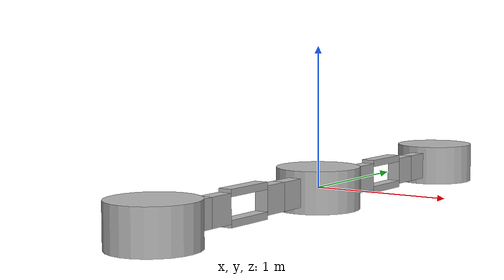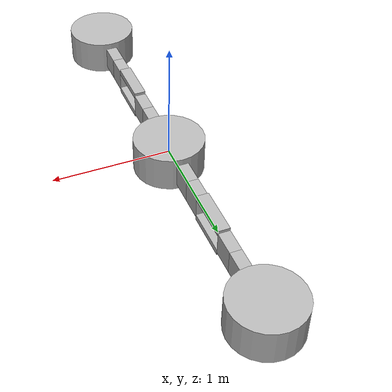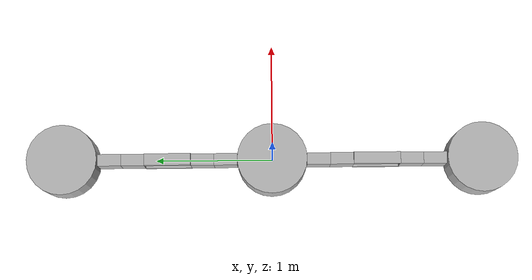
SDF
<?xml version='1.0'?>
<sdf version='1.6'>
    <model name='crx_v1'>
        <static>false</static>
        <self_collide>1</self_collide>

        <link name="world"/>

        <link name="base_link">
            <self_collide>1</self_collide>
            <pose>0 0 0 0 0 0</pose>
            <inertial>
                <mass>0.5</mass>
                <inertia> <!-- inertias are tricky to compute -->
                    <!-- http://gazebosim.org/tutorials?tut=inertia&cat=build_robot -->
                    <ixx>0.083</ixx>       <!-- for a box: ixx = 0.083 * mass * (y*y + z*z) -->
                    <ixy>0.0</ixy>         <!-- for a box: ixy = 0 -->
                    <ixz>0.0</ixz>         <!-- for a box: ixz = 0 -->
                    <iyy>0.083</iyy>       <!-- for a box: iyy = 0.083 * mass * (x*x + z*z) -->
                    <iyz>0.0</iyz>         <!-- for a box: iyz = 0 -->
                    <izz>0.083</izz>       <!-- for a box: izz = 0.083 * mass * (x*x + y*y) -->
                </inertia>
            </inertial>
            <visual name="base_link_visual">
                <geometry>
                    <cylinder>
                        <radius>0.3</radius>
                        <length>0.3</length>
                    </cylinder>
                </geometry>
            </visual>
            <collision name="base_link_collision">
                <geometry>
                    <cylinder>
                        <radius>0.3</radius>
                        <length>0.3</length>
                    </cylinder>
                </geometry>
                <surface>
                    <friction>
                        <ode>
                            <mu>0.01</mu>
                            <mu2>0.01</mu2>
                        </ode>
                    </friction>
                </surface>
            </collision>
        </link>

        <link name="link_LA">
            <self_collide>1</self_collide>
            <pose>0 0.4 0 0 0 0</pose>
            <inertial>
                <mass>0.5</mass>
                <inertia> <!-- inertias are tricky to compute -->
                    <!-- http://gazebosim.org/tutorials?tut=inertia&cat=build_robot -->
                    <ixx>0.083</ixx>       <!-- for a box: ixx = 0.083 * mass * (y*y + z*z) -->
                    <ixy>0.0</ixy>         <!-- for a box: ixy = 0 -->
                    <ixz>0.0</ixz>         <!-- for a box: ixz = 0 -->
                    <iyy>0.083</iyy>       <!-- for a box: iyy = 0.083 * mass * (x*x + z*z) -->
                    <iyz>0.0</iyz>         <!-- for a box: iyz = 0 -->
                    <izz>0.083</izz>       <!-- for a box: izz = 0.083 * mass * (x*x + y*y) -->
                </inertia>
            </inertial>
            <visual name="link_LA_visual">
                <geometry>
                    <box>
                        <size>0.1 0.2 0.2</size>
                    </box>
                </geometry>
            </visual>
            <collision name="link_LA_collision">
                <geometry>
                    <box>
                        <size>0.1 0.2 0.2</size>
                    </box>
                </geometry>
                <surface>
                    <friction>
                        <ode>
                            <mu>0.01</mu>
                            <mu2>0.01</mu2>
                        </ode>
                    </friction>
                </surface>
            </collision>
        </link>

        <link name="link_LB">
            <self_collide>1</self_collide>
            <pose>0 0.6 0 0 0 0</pose>
            <inertial>
                <mass>0.5</mass>
                <inertia> <!-- inertias are tricky to compute -->
                    <!-- http://gazebosim.org/tutorials?tut=inertia&cat=build_robot -->
                    <ixx>0.083</ixx>       <!-- for a box: ixx = 0.083 * mass * (y*y + z*z) -->
                    <ixy>0.0</ixy>         <!-- for a box: ixy = 0 -->
                    <ixz>0.0</ixz>         <!-- for a box: ixz = 0 -->
                    <iyy>0.083</iyy>       <!-- for a box: iyy = 0.083 * mass * (x*x + z*z) -->
                    <iyz>0.0</iyz>         <!-- for a box: iyz = 0 -->
                    <izz>0.083</izz>       <!-- for a box: izz = 0.083 * mass * (x*x + y*y) -->
                </inertia>
            </inertial>
            <visual name="link_LB_visual">
                <geometry>
                    <box>
                        <size>0.1 0.2 0.2</size>
                    </box>
                </geometry>
            </visual>
            <collision name="link_LB_collision">
                <geometry>
                    <box>
                        <size>0.1 0.2 0.2</size>
                    </box>
                </geometry>
                <surface>
                    <friction>
                        <ode>
                            <mu>0.01</mu>
                            <mu2>0.01</mu2>
                        </ode>
                    </friction>
                </surface>
            </collision>
        </link>

        <link name="link_LC">
            <self_collide>1</self_collide>
            <pose>0 0.9 0.1 0 0 0</pose>
            <inertial>
                <mass>0.5</mass>
                <inertia> <!-- inertias are tricky to compute -->
                    <!-- http://gazebosim.org/tutorials?tut=inertia&cat=build_robot -->
                    <ixx>0.083</ixx>       <!-- for a box: ixx = 0.083 * mass * (y*y + z*z) -->
                    <ixy>0.0</ixy>         <!-- for a box: ixy = 0 -->
                    <ixz>0.0</ixz>         <!-- for a box: ixz = 0 -->
                    <iyy>0.083</iyy>       <!-- for a box: iyy = 0.083 * mass * (x*x + z*z) -->
                    <iyz>0.0</iyz>         <!-- for a box: iyz = 0 -->
                    <izz>0.083</izz>       <!-- for a box: izz = 0.083 * mass * (x*x + y*y) -->
                </inertia>
            </inertial>
            <visual name="link_LC_visual">
                <geometry>
                    <box>
                        <size>0.1 0.4 0.05</size>
                    </box>
                </geometry>
            </visual>
            <collision name="link_LC_collision">
                <geometry>
                    <box>
                        <size>0.1 0.4 0.05</size>
                    </box>
                </geometry>
                <surface>
                    <friction>
                        <ode>
                            <mu>0.01</mu>
                            <mu2>0.01</mu2>
                        </ode>
                    </friction>
                </surface>
            </collision>
        </link>

        <link name="link_LD">
            <self_collide>1</self_collide>
            <pose>0 1.2 0 0 0 0</pose>
            <inertial>
                <mass>0.5</mass>
                <inertia> <!-- inertias are tricky to compute -->
                    <!-- http://gazebosim.org/tutorials?tut=inertia&cat=build_robot -->
                    <ixx>0.083</ixx>       <!-- for a box: ixx = 0.083 * mass * (y*y + z*z) -->
                    <ixy>0.0</ixy>         <!-- for a box: ixy = 0 -->
                    <ixz>0.0</ixz>         <!-- for a box: ixz = 0 -->
                    <iyy>0.083</iyy>       <!-- for a box: iyy = 0.083 * mass * (x*x + z*z) -->
                    <iyz>0.0</iyz>         <!-- for a box: iyz = 0 -->
                    <izz>0.083</izz>       <!-- for a box: izz = 0.083 * mass * (x*x + y*y) -->
                </inertia>
            </inertial>
            <visual name="link_LD_visual">
                <geometry>
                    <box>
                        <size>0.1 0.2 0.2</size>
                    </box>
                </geometry>
            </visual>
            <collision name="link_LD_collision">
                <geometry>
                    <box>
                        <size>0.1 0.2 0.2</size>
                    </box>
                </geometry>
                <surface>
                    <friction>
                        <ode>
                            <mu>0.01</mu>
                            <mu2>0.01</mu2>
                        </ode>
                    </friction>
                </surface>
            </collision>
        </link>

        <link name="link_LE">
            <self_collide>1</self_collide>
            <pose>0 1.4 0 0 0 0</pose>
            <inertial>
                <mass>0.5</mass>
                <inertia> <!-- inertias are tricky to compute -->
                    <!-- http://gazebosim.org/tutorials?tut=inertia&cat=build_robot -->
                    <ixx>0.083</ixx>       <!-- for a box: ixx = 0.083 * mass * (y*y + z*z) -->
                    <ixy>0.0</ixy>         <!-- for a box: ixy = 0 -->
                    <ixz>0.0</ixz>         <!-- for a box: ixz = 0 -->
                    <iyy>0.083</iyy>       <!-- for a box: iyy = 0.083 * mass * (x*x + z*z) -->
                    <iyz>0.0</iyz>         <!-- for a box: iyz = 0 -->
                    <izz>0.083</izz>       <!-- for a box: izz = 0.083 * mass * (x*x + y*y) -->
                </inertia>
            </inertial>
            <visual name="link_LE_visual">
                <geometry>
                    <box>
                        <size>0.1 0.2 0.2</size>
                    </box>
                </geometry>
            </visual>
            <collision name="link_LE_collision">
                <geometry>
                    <box>
                        <size>0.1 0.2 0.2</size>
                    </box>
                </geometry>
                <surface>
                    <friction>
                        <ode>
                            <mu>0.01</mu>
                            <mu2>0.01</mu2>
                        </ode>
                    </friction>
                </surface>
            </collision>
        </link>

        <link name="link_LF">
            <self_collide>1</self_collide>
            <pose>0 0.9 -0.1 0 0 0</pose>
            <inertial>
                <mass>0.5</mass>
                <inertia> <!-- inertias are tricky to compute -->
                    <!-- http://gazebosim.org/tutorials?tut=inertia&cat=build_robot -->
                    <ixx>0.083</ixx>       <!-- for a box: ixx = 0.083 * mass * (y*y + z*z) -->
                    <ixy>0.0</ixy>         <!-- for a box: ixy = 0 -->
                    <ixz>0.0</ixz>         <!-- for a box: ixz = 0 -->
                    <iyy>0.083</iyy>       <!-- for a box: iyy = 0.083 * mass * (x*x + z*z) -->
                    <iyz>0.0</iyz>         <!-- for a box: iyz = 0 -->
                    <izz>0.083</izz>       <!-- for a box: izz = 0.083 * mass * (x*x + y*y) -->
                </inertia>
            </inertial>
            <visual name="link_LF_visual">
                <geometry>
                    <box>
                        <size>0.1 0.4 0.05</size>
                    </box>
                </geometry>
            </visual>
            <collision name="link_LF_collision">
                <geometry>
                    <box>
                        <size>0.1 0.4 0.05</size>
                    </box>
                </geometry>
                <surface>
                    <friction>
                        <ode>
                            <mu>0.01</mu>
                            <mu2>0.01</mu2>
                        </ode>
                    </friction>
                </surface>
            </collision>
        </link>

        <link name="end_link_L">
            <self_collide>1</self_collide>
            <pose>0 1.8 0 0 0 0</pose>
            <inertial>
                <mass>0.5</mass>
                <inertia> <!-- inertias are tricky to compute -->
                    <!-- http://gazebosim.org/tutorials?tut=inertia&cat=build_robot -->
                    <ixx>0.083</ixx>       <!-- for a box: ixx = 0.083 * mass * (y*y + z*z) -->
                    <ixy>0.0</ixy>         <!-- for a box: ixy = 0 -->
                    <ixz>0.0</ixz>         <!-- for a box: ixz = 0 -->
                    <iyy>0.083</iyy>       <!-- for a box: iyy = 0.083 * mass * (x*x + z*z) -->
                    <iyz>0.0</iyz>         <!-- for a box: iyz = 0 -->
                    <izz>0.083</izz>       <!-- for a box: izz = 0.083 * mass * (x*x + y*y) -->
                </inertia>
            </inertial>
            <visual name="end_link_L_visual">
                <geometry>
                    <cylinder>
                        <radius>0.3</radius>
                        <length>0.3</length>
                    </cylinder>
                </geometry>
            </visual>
            <collision name="end_link_L_collision">
                <geometry>
                    <cylinder>
                        <radius>0.3</radius>
                        <length>0.3</length>
                    </cylinder>
                </geometry>
                <surface>
                    <friction>
                        <ode>
                            <mu>0.01</mu>
                            <mu2>0.01</mu2>
                        </ode>
                    </friction>
                </surface>
            </collision>
        </link>

        <link name="link_RA">
            <self_collide>1</self_collide>
            <pose>0 -0.4 0 0 0 0</pose>
            <inertial>
                <mass>0.5</mass>
                <inertia> <!-- inertias are tricky to compute -->
                    <!-- http://gazebosim.org/tutorials?tut=inertia&cat=build_robot -->
                    <ixx>0.083</ixx>       <!-- for a box: ixx = 0.083 * mass * (y*y + z*z) -->
                    <ixy>0.0</ixy>         <!-- for a box: ixy = 0 -->
                    <ixz>0.0</ixz>         <!-- for a box: ixz = 0 -->
                    <iyy>0.083</iyy>       <!-- for a box: iyy = 0.083 * mass * (x*x + z*z) -->
                    <iyz>0.0</iyz>         <!-- for a box: iyz = 0 -->
                    <izz>0.083</izz>       <!-- for a box: izz = 0.083 * mass * (x*x + y*y) -->
                </inertia>
            </inertial>
            <visual name="link_RA_visual">
                <geometry>
                    <box>
                        <size>0.1 0.2 0.2</size>
                    </box>
                </geometry>
            </visual>
            <collision name="link_RA_collision">
                <geometry>
                    <box>
                        <size>0.1 0.2 0.2</size>
                    </box>
                </geometry>
                <surface>
                    <friction>
                        <ode>
                            <mu>0.01</mu>
                            <mu2>0.01</mu2>
                        </ode>
                    </friction>
                </surface>
            </collision>
        </link>

        <link name="link_RB">
            <self_collide>1</self_collide>
            <pose>0 -0.6 0 0 0 0</pose>
            <inertial>
                <mass>0.5</mass>
                <inertia> <!-- inertias are tricky to compute -->
                    <!-- http://gazebosim.org/tutorials?tut=inertia&cat=build_robot -->
                    <ixx>0.083</ixx>       <!-- for a box: ixx = 0.083 * mass * (y*y + z*z) -->
                    <ixy>0.0</ixy>         <!-- for a box: ixy = 0 -->
                    <ixz>0.0</ixz>         <!-- for a box: ixz = 0 -->
                    <iyy>0.083</iyy>       <!-- for a box: iyy = 0.083 * mass * (x*x + z*z) -->
                    <iyz>0.0</iyz>         <!-- for a box: iyz = 0 -->
                    <izz>0.083</izz>       <!-- for a box: izz = 0.083 * mass * (x*x + y*y) -->
                </inertia>
            </inertial>
            <visual name="link_RB_visual">
                <geometry>
                    <box>
                        <size>0.1 0.2 0.2</size>
                    </box>
                </geometry>
            </visual>
            <collision name="link_RB_collision">
                <geometry>
                    <box>
                        <size>0.1 0.2 0.2</size>
                    </box>
                </geometry>
                <surface>
                    <friction>
                        <ode>
                            <mu>0.01</mu>
                            <mu2>0.01</mu2>
                        </ode>
                    </friction>
                </surface>
            </collision>
        </link>

        <link name="link_RC">
            <self_collide>1</self_collide>
            <pose>0 -0.9 0.1 0 0 0</pose>
            <inertial>
                <mass>0.5</mass>
                <inertia> <!-- inertias are tricky to compute -->
                    <!-- http://gazebosim.org/tutorials?tut=inertia&cat=build_robot -->
                    <ixx>0.083</ixx>       <!-- for a box: ixx = 0.083 * mass * (y*y + z*z) -->
                    <ixy>0.0</ixy>         <!-- for a box: ixy = 0 -->
                    <ixz>0.0</ixz>         <!-- for a box: ixz = 0 -->
                    <iyy>0.083</iyy>       <!-- for a box: iyy = 0.083 * mass * (x*x + z*z) -->
                    <iyz>0.0</iyz>         <!-- for a box: iyz = 0 -->
                    <izz>0.083</izz>       <!-- for a box: izz = 0.083 * mass * (x*x + y*y) -->
                </inertia>
            </inertial>
            <visual name="link_RC_visual">
                <geometry>
                    <box>
                        <size>0.1 0.4 0.05</size>
                    </box>
                </geometry>
            </visual>
            <collision name="link_RC_collision">
                <geometry>
                    <box>
                        <size>0.1 0.4 0.05</size>
                    </box>
                </geometry>
                <surface>
                    <friction>
                        <ode>
                            <mu>0.01</mu>
                            <mu2>0.01</mu2>
                        </ode>
                    </friction>
                </surface>
            </collision>
        </link>

        <link name="link_RD">
            <self_collide>1</self_collide>
            <pose>0 -1.2 0 0 0 0</pose>
            <inertial>
                <mass>0.5</mass>
                <inertia> <!-- inertias are tricky to compute -->
                    <!-- http://gazebosim.org/tutorials?tut=inertia&cat=build_robot -->
                    <ixx>0.083</ixx>       <!-- for a box: ixx = 0.083 * mass * (y*y + z*z) -->
                    <ixy>0.0</ixy>         <!-- for a box: ixy = 0 -->
                    <ixz>0.0</ixz>         <!-- for a box: ixz = 0 -->
                    <iyy>0.083</iyy>       <!-- for a box: iyy = 0.083 * mass * (x*x + z*z) -->
                    <iyz>0.0</iyz>         <!-- for a box: iyz = 0 -->
                    <izz>0.083</izz>       <!-- for a box: izz = 0.083 * mass * (x*x + y*y) -->
                </inertia>
            </inertial>
            <visual name="link_RD_visual">
                <geometry>
                    <box>
                        <size>0.1 0.2 0.2</size>
                    </box>
                </geometry>
            </visual>
            <collision name="link_RD_collision">
                <geometry>
                    <box>
                        <size>0.1 0.2 0.2</size>
                    </box>
                </geometry>
                <surface>
                    <friction>
                        <ode>
                            <mu>0.01</mu>
                            <mu2>0.01</mu2>
                        </ode>
                    </friction>
                </surface>
            </collision>
        </link>

        <link name="link_RE">
            <self_collide>1</self_collide>
            <pose>0 -1.4 0 0 0 0</pose>
            <inertial>
                <mass>0.5</mass>
                <inertia> <!-- inertias are tricky to compute -->
                    <!-- http://gazebosim.org/tutorials?tut=inertia&cat=build_robot -->
                    <ixx>0.083</ixx>       <!-- for a box: ixx = 0.083 * mass * (y*y + z*z) -->
                    <ixy>0.0</ixy>         <!-- for a box: ixy = 0 -->
                    <ixz>0.0</ixz>         <!-- for a box: ixz = 0 -->
                    <iyy>0.083</iyy>       <!-- for a box: iyy = 0.083 * mass * (x*x + z*z) -->
                    <iyz>0.0</iyz>         <!-- for a box: iyz = 0 -->
                    <izz>0.083</izz>       <!-- for a box: izz = 0.083 * mass * (x*x + y*y) -->
                </inertia>
            </inertial>
            <visual name="link_RE_visual">
                <geometry>
                    <box>
                        <size>0.1 0.2 0.2</size>
                    </box>
                </geometry>
            </visual>
            <collision name="link_RE_collision">
                <geometry>
                    <box>
                        <size>0.1 0.2 0.2</size>
                    </box>
                </geometry>
                <surface>
                    <friction>
                        <ode>
                            <mu>0.01</mu>
                            <mu2>0.01</mu2>
                        </ode>
                    </friction>
                </surface>
            </collision>
        </link>

        <link name="link_RF">
            <self_collide>1</self_collide>
            <pose>0 -0.9 -0.1 0 0 0</pose>
            <inertial>
                <mass>0.5</mass>
                <inertia> <!-- inertias are tricky to compute -->
                    <!-- http://gazebosim.org/tutorials?tut=inertia&cat=build_robot -->
                    <ixx>0.083</ixx>       <!-- for a box: ixx = 0.083 * mass * (y*y + z*z) -->
                    <ixy>0.0</ixy>         <!-- for a box: ixy = 0 -->
                    <ixz>0.0</ixz>         <!-- for a box: ixz = 0 -->
                    <iyy>0.083</iyy>       <!-- for a box: iyy = 0.083 * mass * (x*x + z*z) -->
                    <iyz>0.0</iyz>         <!-- for a box: iyz = 0 -->
                    <izz>0.083</izz>       <!-- for a box: izz = 0.083 * mass * (x*x + y*y) -->
                </inertia>
            </inertial>
            <visual name="link_RF_visual">
                <geometry>
                    <box>
                        <size>0.1 0.4 0.05</size>
                    </box>
                </geometry>
            </visual>
            <collision name="link_RF_collision">
                <geometry>
                    <box>
                        <size>0.1 0.4 0.05</size>
                    </box>
                </geometry>
                <surface>
                    <friction>
                        <ode>
                            <mu>0.01</mu>
                            <mu2>0.01</mu2>
                        </ode>
                    </friction>
                </surface>
            </collision>
        </link>

        <link name="end_link_R">
            <self_collide>1</self_collide>
            <pose>0 -1.8 0 0 0 0</pose>
            <inertial>
                <mass>0.5</mass>
                <inertia> <!-- inertias are tricky to compute -->
                    <!-- http://gazebosim.org/tutorials?tut=inertia&cat=build_robot -->
                    <ixx>0.083</ixx>       <!-- for a box: ixx = 0.083 * mass * (y*y + z*z) -->
                    <ixy>0.0</ixy>         <!-- for a box: ixy = 0 -->
                    <ixz>0.0</ixz>         <!-- for a box: ixz = 0 -->
                    <iyy>0.083</iyy>       <!-- for a box: iyy = 0.083 * mass * (x*x + z*z) -->
                    <iyz>0.0</iyz>         <!-- for a box: iyz = 0 -->
                    <izz>0.083</izz>       <!-- for a box: izz = 0.083 * mass * (x*x + y*y) -->
                </inertia>
            </inertial>
            <visual name="end_link_R_visual">
                <geometry>
                    <cylinder>
                        <radius>0.3</radius>
                        <length>0.3</length>
                    </cylinder>
                </geometry>
            </visual>
            <collision name="end_link_R_collision">
                <geometry>
                    <cylinder>
                        <radius>0.3</radius>
                        <length>0.3</length>
                    </cylinder>
                </geometry>
                <surface>
                    <friction>
                        <ode>
                            <mu>0.01</mu>
                            <mu2>0.01</mu2>
                        </ode>
                    </friction>
                </surface>
            </collision>
        </link>

        <joint name="world_to_base_link" type="fixed">
            <parent>world</parent>
            <child>base_link</child>
            <pose>0 0 0 0 0 0</pose>
        </joint>

        <joint name="base_link_to_link_LA" type="fixed">
            <parent>base_link</parent>
            <child>link_LA</child>
            <pose>0 -0.1 0 0 0 0</pose>
        </joint>

        <joint name="link_LA_to_link_LB" type="revolute">
            <parent>link_LA</parent>
            <child>link_LB</child>
            <pose>0 -0.1 0 0 0 0</pose>
            <axis>
                <limit>
                    <lower>-1.0</lower>
                    <upper>1.0</upper>
                    <effort>100.0</effort>
                    <velocity>3.14</velocity>
                </limit>
                <xyz>0 0 1</xyz>
            </axis>
        </joint>

        <joint name="link_LB_to_link_LC" type="revolute">
            <parent>link_LB</parent>
            <child>link_LC</child>
            <pose>0 -0.2 0 0 0 0</pose>
            <axis>
                <limit>
                    <lower>-1.0</lower>
                    <upper>1.0</upper>
                    <effort>100.0</effort>
                    <velocity>3.14</velocity>
                </limit>
                <xyz>1 0 0</xyz>
            </axis>
        </joint>

        <joint name="link_LC_to_link_LD" type="revolute">
            <parent>link_LC</parent>
            <child>link_LD</child>
            <pose>0 -0.1 0.1 0 0 0</pose>
            <axis>
                <xyz>1 0 0</xyz>
            </axis>
        </joint>

        <joint name="link_LD_to_link_LE" type="revolute">
            <parent>link_LD</parent>
            <child>link_LE</child>
            <pose>0 -0.1 0 0 0 0</pose>
            <axis>
                <limit>
                    <lower>-1.0</lower>
                    <upper>1.0</upper>
                    <effort>100.0</effort>
                    <velocity>3.14</velocity>
                </limit>
                <xyz>0 0 1</xyz>
            </axis>
        </joint>

        <joint name="link_LD_to_link_LF" type="revolute">
            <parent>link_LD</parent>
            <child>link_LF</child>
            <pose>0 0.2 0 0 0 0</pose>
            <axis>
                <xyz>1 0 0</xyz>
            </axis>
        </joint>

        <joint name="close_joint_L" type="revolute">
            <parent>link_LF</parent>
            <child>link_LB</child>
            <pose>0 0.1 -0.1 0 0 0</pose>
            <axis>
                <xyz>1 0 0</xyz>
            </axis>
        </joint>

        <joint name="link_LE_to_end_link_L" type="fixed">
            <parent>link_LE</parent>
            <child>end_link_L</child>
            <pose>0 -0.3 0 0 0 0</pose>
        </joint>

        <joint name="base_link_to_link_RA" type="fixed">
            <parent>base_link</parent>
            <child>link_RA</child>
            <pose>0 0.1 0 0 0 0</pose>
        </joint>

        <joint name="link_RA_to_link_RB" type="revolute">
            <parent>link_RA</parent>
            <child>link_RB</child>
            <pose>0 0.1 0 0 0 0</pose>
            <axis>
                <limit>
                    <lower>-1.0</lower>
                    <upper>1.0</upper>
                    <effort>100.0</effort>
                    <velocity>3.14</velocity>
                </limit>
                <xyz>0 0 1</xyz>
            </axis>
        </joint>

        <joint name="link_RB_to_link_RC" type="revolute">
            <parent>link_RB</parent>
            <child>link_RC</child>
            <pose>0 0.2 0 0 0 0</pose>
            <axis>
                <limit>
                    <lower>-1.0</lower>
                    <upper>1.0</upper>
                    <effort>100.0</effort>
                    <velocity>3.14</velocity>
                </limit>
                <xyz>1 0 0</xyz>
            </axis>
        </joint>

        <joint name="link_RC_to_link_RD" type="revolute">
            <parent>link_RC</parent>
            <child>link_RD</child>
            <pose>0 0.1 0.1 0 0 0</pose>
            <axis>
                <xyz>1 0 0</xyz>
            </axis>
        </joint>

        <joint name="link_RD_to_link_RE" type="revolute">
            <parent>link_RD</parent>
            <child>link_RE</child>
            <pose>0 0.1 0 0 0 0</pose>
            <axis>
                <limit>
                    <lower>-1.0</lower>
                    <upper>1.0</upper>
                    <effort>100.0</effort>
                    <velocity>3.14</velocity>
                </limit>
                <xyz>0 0 1</xyz>
            </axis>
        </joint>

        <joint name="link_RD_to_link_RF" type="revolute">
            <parent>link_RD</parent>
            <child>link_RF</child>
            <pose>0 -0.2 0 0 0 0</pose>
            <axis>
                <xyz>1 0 0</xyz>
            </axis>
        </joint>

        <joint name="close_joint_R" type="revolute">
            <parent>link_RF</parent>
            <child>link_RB</child>
            <pose>0 -0.1 -0.1 0 0 0</pose>
            <axis>
                <xyz>1 0 0</xyz>
            </axis>
        </joint>

        <joint name="link_RE_to_end_link_R" type="fixed">
            <parent>link_RE</parent>
            <child>end_link_R</child>
            <pose>0 -0.3 0 0 0 0</pose>
        </joint>

        <!-- gazebo_ros_control plugins -->
        <plugin name="gazebo_ros_control" filename="libgazebo_ros_control.so">
            <robotNamespace>crx_v1</robotNamespace>
            <robotSimType>gazebo_ros_control/DefaultRobotHWSim</robotSimType>
            <legacyModeNS>true</legacyModeNS>
        </plugin>

        <plugin name="joint_state_publisher" filename="libgazebo_ros_joint_state_publisher.so">
            <robotNamespace>crx_v1</robotNamespace>
            <jointName>link_LA_to_link_LB, link_LB_to_link_LC, link_LC_to_link_LD, link_LD_to_link_LE, link_LD_to_link_LF, link_RA_to_link_RB, link_RB_to_link_RC, link_RC_to_link_RD, link_RD_to_link_RE, link_RD_to_link_RF</jointName>
            <!-- SDF記述メモ："fixed"に設定されたJointはnan値が出力されるのでROS側で下記エラーが出る -->
            <!-- Ignoring transform for child_frame_id "hoge" from authority "unknown_publisher" because of an invalid quaternion in the transform (nan nan nan nan) -->
        </plugin>

    </model>
</sdf>
